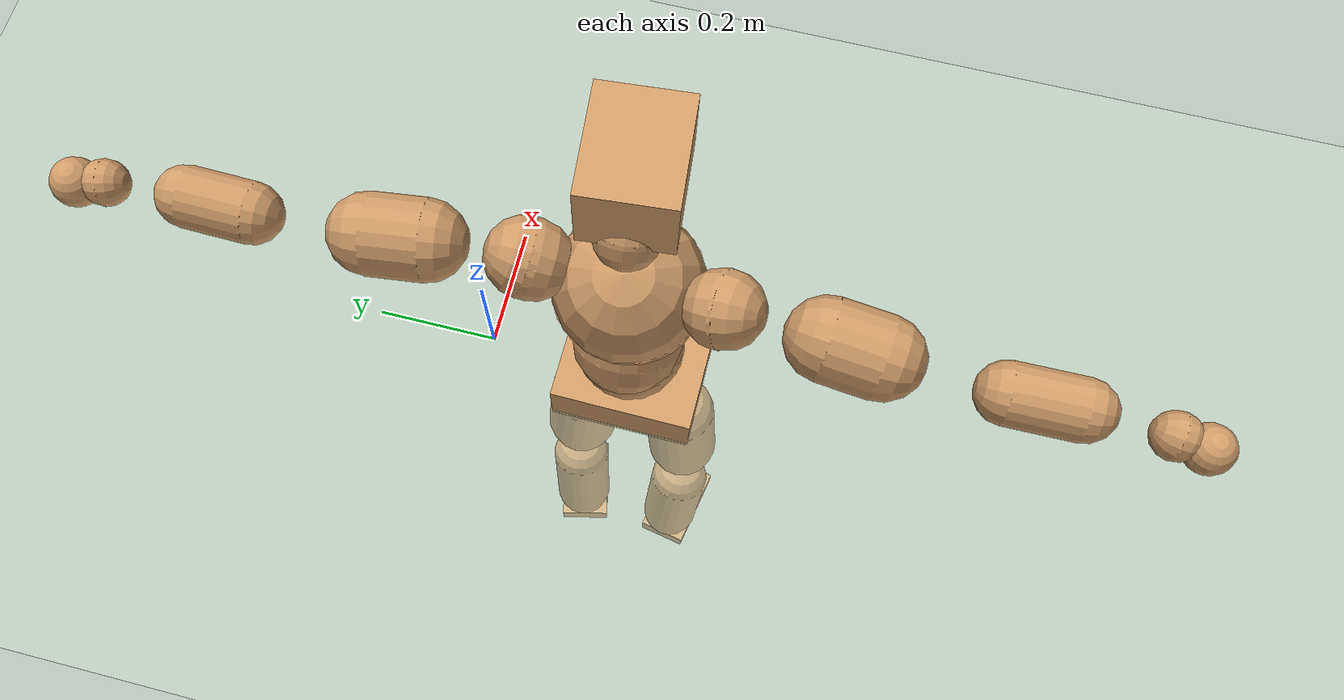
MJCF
<mujoco model="humanoid">
  <compiler coordinate="local" angle="radian"/>
  <default>
    <joint damping="0.0" armature="0.01" stiffness="0.0" limited="true"/>
    <geom conaffinity="1" condim="3" contype="7" margin="0.001" rgba="0.8 0.6 .4 1"/>
  </default>
  <asset>
    <texture type="skybox" builtin="gradient" rgb1=".4 .5 .6" rgb2="0 0 0" width="100" height="100"/>
    <texture builtin="flat" height="1278" mark="cross" markrgb="1 1 1" name="texgeom" random="0.01" rgb1="0.8 0.6 0.4" rgb2="0.8 0.6 0.4" type="cube" width="127"/>
    <texture builtin="checker" height="100" name="texplane" rgb1="0 0 0" rgb2="0.8 0.8 0.8" type="2d" width="100"/>
    <material name="MatPlane" reflectance="0.5" shininess="1" specular="1" texrepeat="60 60" texture="texplane"/>
    <material name="geom" texture="texgeom" texuniform="true"/>
  </asset>
  <worldbody>
    <light cutoff="100" diffuse="1 1 1" dir="-0 0 -1.3" directional="true" exponent="1" pos="0 0 1.3" specular=".1 .1 .1"/>
    <geom conaffinity="1" condim="3" name="floor" pos="0 0 0" rgba="0.8 0.9 0.8 1" size="100 100 .2" type="plane" material="MatPlane"/>
    <body name="Pelvis" pos="-0 -0.2455 0.0458">
      <freejoint name="Pelvis"/>
      <geom type="box" contype="1" conaffinity="1" density="5359.375217" pos="-0.0047 0.0001 -0.0126" size="0.0939 0.1157 0.0439" quat="1.0000 0.0000 0.0000 -0.0058" name="Pelvis"/>
      <body name="L_Hip" pos="0.0023 0.0779 -0.0928">
        <joint name="L_Hip_x" type="hinge" pos="0 0 0" axis="1 0 0" stiffness="1600" damping="160" armature="0.02" range="-180.0000 180.0000"/>
        <joint name="L_Hip_y" type="hinge" pos="0 0 0" axis="0 1 0" stiffness="1600" damping="160" armature="0.02" range="-180.0000 180.0000"/>
        <joint name="L_Hip_z" type="hinge" pos="0 0 0" axis="0 0 1" stiffness="1600" damping="160" armature="0.02" range="-180.0000 180.0000"/>
        <geom type="capsule" contype="1" conaffinity="1" density="2040.816327" size="0.0634" fromto="-0.0032 0.0072 -0.0931 -0.0087 0.0193 -0.2510" name="L_Hip"/>
        <body name="L_Knee" pos="-0.012 0.0265 -0.3441">
          <joint name="L_Knee_x" type="hinge" pos="0 0 0" axis="1 0 0" stiffness="1600" damping="160" armature="0.02" range="-180.0000 180.0000"/>
          <joint name="L_Knee_y" type="hinge" pos="0 0 0" axis="0 1 0" stiffness="1600" damping="160" armature="0.02" range="-180.0000 180.0000"/>
          <joint name="L_Knee_z" type="hinge" pos="0 0 0" axis="0 0 1" stiffness="1600" damping="160" armature="0.02" range="-180.0000 180.0000"/>
          <geom type="capsule" contype="1" conaffinity="1" density="1234.567901" size="0.055" fromto="-0.0101 -0.0027 -0.0844 -0.0342 -0.0089 -0.2842" name="L_Knee"/>
          <body name="L_Ankle" pos="-0.0443 -0.0116 -0.3686">
            <joint name="L_Ankle_x" type="hinge" pos="0 0 0" axis="1 0 0" stiffness="1600" damping="160" armature="0.02" range="-180.0000 180.0000"/>
            <joint name="L_Ankle_y" type="hinge" pos="0 0 0" axis="0 1 0" stiffness="1600" damping="160" armature="0.02" range="-180.0000 180.0000"/>
            <joint name="L_Ankle_z" type="hinge" pos="0 0 0" axis="0 0 1" stiffness="1600" damping="160" armature="0.02" range="-180.0000 180.0000"/>
            <geom type="box" contype="1" conaffinity="1" density="1000.000015" pos="0.0578 0.0136 -0.0276" size="0.0823 0.0491 0.0202" quat="0.9934 0.0000 0.0000 0.1149" name="L_Ankle"/>
            <body name="L_Toe" pos="0.1155 0.0271 -0.0552">
              <joint name="L_Toe_x" type="hinge" pos="0 0 0" axis="1 0 0" stiffness="1000" damping="100" armature="0.02" range="-180.0000 180.0000"/>
              <joint name="L_Toe_y" type="hinge" pos="0 0 0" axis="0 1 0" stiffness="1000" damping="100" armature="0.02" range="-180.0000 180.0000"/>
              <joint name="L_Toe_z" type="hinge" pos="0 0 0" axis="0 0 1" stiffness="1000" damping="100" armature="0.02" range="-180.0000 180.0000"/>
              <geom type="box" contype="1" conaffinity="1" density="8126748.454613" pos="0.0000 0.0000 0.0278" size="0.001 0.0024 0.001" quat="0.9926 0.0000 0.0000 0.1211" name="L_Toe"/>
            </body>
          </body>
        </body>
      </body>
      <body name="R_Hip" pos="0.0047 -0.0747 -0.0929">
        <joint name="R_Hip_x" type="hinge" pos="0 0 0" axis="1 0 0" stiffness="1600" damping="160" armature="0.02" range="-180.0000 180.0000"/>
        <joint name="R_Hip_y" type="hinge" pos="0 0 0" axis="0 1 0" stiffness="1600" damping="160" armature="0.02" range="-180.0000 180.0000"/>
        <joint name="R_Hip_z" type="hinge" pos="0 0 0" axis="0 0 1" stiffness="1600" damping="160" armature="0.02" range="-180.0000 180.0000"/>
        <geom type="capsule" contype="1" conaffinity="1" density="2040.816327" size="0.0626" fromto="-0.0035 -0.0086 -0.0922 -0.0097 -0.0243 -0.2598" name="R_Hip"/>
        <body name="R_Knee" pos="-0.0132 -0.033 -0.352">
          <joint name="R_Knee_x" type="hinge" pos="0 0 0" axis="1 0 0" stiffness="1600" damping="160" armature="0.02" range="-180.0000 180.0000"/>
          <joint name="R_Knee_y" type="hinge" pos="0 0 0" axis="0 1 0" stiffness="1600" damping="160" armature="0.02" range="-180.0000 180.0000"/>
          <joint name="R_Knee_z" type="hinge" pos="0 0 0" axis="0 0 1" stiffness="1600" damping="160" armature="0.02" range="-180.0000 180.0000"/>
          <geom type="capsule" contype="1" conaffinity="1" density="1234.567901" size="0.0553" fromto="-0.0099 0.0030 -0.0847 -0.0336 0.0101 -0.2862" name="R_Knee"/>
          <body name="R_Ankle" pos="-0.0435 0.0131 -0.3708">
            <joint name="R_Ankle_x" type="hinge" pos="0 0 0" axis="1 0 0" stiffness="1600" damping="160" armature="0.02" range="-180.0000 180.0000"/>
            <joint name="R_Ankle_y" type="hinge" pos="0 0 0" axis="0 1 0" stiffness="1600" damping="160" armature="0.02" range="-180.0000 180.0000"/>
            <joint name="R_Ankle_z" type="hinge" pos="0 0 0" axis="0 0 1" stiffness="1600" damping="160" armature="0.02" range="-180.0000 180.0000"/>
            <geom type="box" contype="1" conaffinity="1" density="999.999951" pos="0.0599 -0.0115 -0.0233" size="0.0836 0.0478 0.0203" quat="0.9955 0.0000 0.0000 -0.0945" name="R_Ankle"/>
            <body name="R_Toe" pos="0.1197 -0.0229 -0.0465">
              <joint name="R_Toe_x" type="hinge" pos="0 0 0" axis="1 0 0" stiffness="1000" damping="100" armature="0.02" range="-180.0000 180.0000"/>
              <joint name="R_Toe_y" type="hinge" pos="0 0 0" axis="0 1 0" stiffness="1000" damping="100" armature="0.02" range="-180.0000 180.0000"/>
              <joint name="R_Toe_z" type="hinge" pos="0 0 0" axis="0 0 1" stiffness="1000" damping="100" armature="0.02" range="-180.0000 180.0000"/>
              <geom type="box" contype="1" conaffinity="1" density="8065777.958834" pos="0.0000 0.0000 0.0256" size="0.001 0.0024 0.0011" quat="0.9964 0.0000 0.0000 -0.0851" name="R_Toe"/>
            </body>
          </body>
        </body>
      </body>
      <body name="Torso" pos="-0.035 -0.0029 0.11">
        <joint name="Torso_x" type="hinge" pos="0 0 0" axis="1 0 0" stiffness="2000" damping="200" armature="0.02" range="-180.0000 180.0000"/>
        <joint name="Torso_y" type="hinge" pos="0 0 0" axis="0 1 0" stiffness="2000" damping="200" armature="0.02" range="-180.0000 180.0000"/>
        <joint name="Torso_z" type="hinge" pos="0 0 0" axis="0 0 1" stiffness="2000" damping="200" armature="0.02" range="-180.0000 180.0000"/>
        <geom type="capsule" contype="1" conaffinity="1" density="2040.816327" size="0.0814" fromto="-0.0043 0.0025 0.0813 -0.0030 0.0017 0.0555" name="Torso"/>
        <body name="Spine" pos="-0.0073 0.0042 0.1367">
          <joint name="Spine_x" type="hinge" pos="0 0 0" axis="1 0 0" stiffness="2000" damping="200" armature="0.02" range="-180.0000 180.0000"/>
          <joint name="Spine_y" type="hinge" pos="0 0 0" axis="0 1 0" stiffness="2000" damping="200" armature="0.02" range="-180.0000 180.0000"/>
          <joint name="Spine_z" type="hinge" pos="0 0 0" axis="0 0 1" stiffness="2000" damping="200" armature="0.02" range="-180.0000 180.0000"/>
          <geom type="capsule" contype="1" conaffinity="1" density="2040.816327" size="0.0816" fromto="0.0403 0.0016 0.0709 -0.0096 -0.0004 -0.0168" name="Spine"/>
          <body name="Chest" pos="0.0307 0.0012 0.0541">
            <joint name="Chest_x" type="hinge" pos="0 0 0" axis="1 0 0" stiffness="2000" damping="200" armature="0.02" range="-180.0000 180.0000"/>
            <joint name="Chest_y" type="hinge" pos="0 0 0" axis="0 1 0" stiffness="2000" damping="200" armature="0.02" range="-180.0000 180.0000"/>
            <joint name="Chest_z" type="hinge" pos="0 0 0" axis="0 0 1" stiffness="2000" damping="200" armature="0.02" range="-180.0000 180.0000"/>
            <geom type="capsule" contype="1" conaffinity="1" density="2040.816327" size="0.1057" fromto="-0.0327 -0.0007 0.1005 -0.0218 -0.0005 0.0671" name="Chest"/>
            <body name="Neck" pos="-0.0674 -0.0019 0.2382">
              <joint name="Neck_x" type="hinge" pos="0 0 0" axis="1 0 0" stiffness="1000" damping="100" armature="0.02" range="-180.0000 180.0000"/>
              <joint name="Neck_y" type="hinge" pos="0 0 0" axis="0 1 0" stiffness="1000" damping="100" armature="0.02" range="-180.0000 180.0000"/>
              <joint name="Neck_z" type="hinge" pos="0 0 0" axis="0 0 1" stiffness="1000" damping="100" armature="0.02" range="-180.0000 180.0000"/>
              <geom type="capsule" contype="1" conaffinity="1" density="1000" size="0.0443" fromto="0.0268 0.0013 0.0353 0.0231 0.0011 0.0304" name="Neck"/>
              <body name="Head" pos="0.0498 0.0025 0.0656">
                <joint name="Head_x" type="hinge" pos="0 0 0" axis="1 0 0" stiffness="1000" damping="100" armature="0.02" range="-180.0000 180.0000"/>
                <joint name="Head_y" type="hinge" pos="0 0 0" axis="0 1 0" stiffness="1000" damping="100" armature="0.02" range="-180.0000 180.0000"/>
                <joint name="Head_z" type="hinge" pos="0 0 0" axis="0 0 1" stiffness="1000" damping="100" armature="0.02" range="-180.0000 180.0000"/>
                <geom type="box" contype="1" conaffinity="1" density="2250.00017" pos="0.0259 0.0022 0.0338" size="0.076 0.0618 0.0546" quat="0.9991 0.0000 0.0000 0.0428" name="Head"/>
              </body>
            </body>
            <body name="L_Thorax" pos="-0.0451 0.0823 0.1337">
              <joint name="L_Thorax_x" type="hinge" pos="0 0 0" axis="1 0 0" stiffness="1000" damping="100" armature="0.02" range="-180.0000 180.0000"/>
              <joint name="L_Thorax_y" type="hinge" pos="0 0 0" axis="0 1 0" stiffness="1000" damping="100" armature="0.02" range="-180.0000 180.0000"/>
              <joint name="L_Thorax_z" type="hinge" pos="0 0 0" axis="0 0 1" stiffness="1000" damping="100" armature="0.02" range="-180.0000 180.0000"/>
              <geom type="capsule" contype="1" conaffinity="1" density="1000" size="0.0553" fromto="-0.0045 0.0524 0.0172 -0.0036 0.0416 0.0137" name="L_Thorax"/>
              <body name="L_Shoulder" pos="-0.0081 0.094 0.0309">
                <joint name="L_Shoulder_x" type="hinge" pos="0 0 0" axis="1 0 0" stiffness="1000" damping="100" armature="0.02" range="-720.0000 720.0000"/>
                <joint name="L_Shoulder_y" type="hinge" pos="0 0 0" axis="0 1 0" stiffness="1000" damping="100" armature="0.02" range="-720.0000 720.0000"/>
                <joint name="L_Shoulder_z" type="hinge" pos="0 0 0" axis="0 0 1" stiffness="1000" damping="100" armature="0.02" range="-720.0000 720.0000"/>
                <geom type="capsule" contype="1" conaffinity="1" density="1000" size="0.0557" fromto="-0.0093 0.0851 -0.0027 -0.0177 0.1623 -0.0052" name="L_Shoulder"/>
                <body name="L_Elbow" pos="-0.027 0.2474 -0.0079">
                  <joint name="L_Elbow_x" type="hinge" pos="0 0 0" axis="1 0 0" stiffness="1000" damping="100" armature="0.02" range="-720.0000 720.0000"/>
                  <joint name="L_Elbow_y" type="hinge" pos="0 0 0" axis="0 1 0" stiffness="1000" damping="100" armature="0.02" range="-720.0000 720.0000"/>
                  <joint name="L_Elbow_z" type="hinge" pos="0 0 0" axis="0 0 1" stiffness="1000" damping="100" armature="0.02" range="-720.0000 720.0000"/>
                  <geom type="capsule" contype="1" conaffinity="1" density="1000" size="0.0421" fromto="0.0007 0.0720 0.0022 0.0016 0.1620 0.0049" name="L_Elbow"/>
                  <body name="L_Wrist" pos="0.0024 0.2341 0.0071">
                    <joint name="L_Wrist_x" type="hinge" pos="0 0 0" axis="1 0 0" stiffness="600" damping="60" armature="0.02" range="-180.0000 180.0000"/>
                    <joint name="L_Wrist_y" type="hinge" pos="0 0 0" axis="0 1 0" stiffness="600" damping="60" armature="0.02" range="-180.0000 180.0000"/>
                    <joint name="L_Wrist_z" type="hinge" pos="0 0 0" axis="0 0 1" stiffness="600" damping="60" armature="0.02" range="-180.0000 180.0000"/>
                    <geom type="capsule" contype="1" conaffinity="1" density="1000" size="0.0317" fromto="-0.0065 0.0404 -0.0048 -0.0068 0.0423 -0.0050" name="L_Wrist"/>
                    <body name="L_Hand" pos="-0.0133 0.0827 -0.0098">
                      <joint name="L_Hand_x" type="hinge" pos="0 0 0" axis="1 0 0" stiffness="600" damping="60" armature="0.02" range="-180.0000 180.0000"/>
                      <joint name="L_Hand_y" type="hinge" pos="0 0 0" axis="0 1 0" stiffness="600" damping="60" armature="0.02" range="-180.0000 180.0000"/>
                      <joint name="L_Hand_z" type="hinge" pos="0 0 0" axis="0 0 1" stiffness="600" damping="60" armature="0.02" range="-180.0000 180.0000"/>
                      <geom type="sphere" contype="1" conaffinity="1" density="1000" size="0.0335" pos="0.0000 0.0000 0.0000" name="L_Hand"/>
                    </body>
                  </body>
                </body>
              </body>
            </body>
            <body name="R_Thorax" pos="-0.0511 -0.0841 0.1309">
              <joint name="R_Thorax_x" type="hinge" pos="0 0 0" axis="1 0 0" stiffness="1000" damping="100" armature="0.02" range="-180.0000 180.0000"/>
              <joint name="R_Thorax_y" type="hinge" pos="0 0 0" axis="0 1 0" stiffness="1000" damping="100" armature="0.02" range="-180.0000 180.0000"/>
              <joint name="R_Thorax_z" type="hinge" pos="0 0 0" axis="0 0 1" stiffness="1000" damping="100" armature="0.02" range="-180.0000 180.0000"/>
              <geom type="capsule" contype="1" conaffinity="1" density="1000" size="0.054" fromto="-0.0058 -0.0509 0.0170 -0.0053 -0.0460 0.0154" name="R_Thorax"/>
              <body name="R_Shoulder" pos="-0.0111 -0.097 0.0324">
                <joint name="R_Shoulder_x" type="hinge" pos="0 0 0" axis="1 0 0" stiffness="1000" damping="100" armature="0.02" range="-720.0000 720.0000"/>
                <joint name="R_Shoulder_y" type="hinge" pos="0 0 0" axis="0 1 0" stiffness="1000" damping="100" armature="0.02" range="-720.0000 720.0000"/>
                <joint name="R_Shoulder_z" type="hinge" pos="0 0 0" axis="0 0 1" stiffness="1000" damping="100" armature="0.02" range="-720.0000 720.0000"/>
                <geom type="capsule" contype="1" conaffinity="1" density="1000" size="0.0567" fromto="-0.0075 -0.0863 -0.0042 -0.0138 -0.1590 -0.0077" name="R_Shoulder"/>
                <body name="R_Elbow" pos="-0.0213 -0.2452 -0.0118">
                  <joint name="R_Elbow_x" type="hinge" pos="0 0 0" axis="1 0 0" stiffness="1000" damping="100" armature="0.02" range="-720.0000 720.0000"/>
                  <joint name="R_Elbow_y" type="hinge" pos="0 0 0" axis="0 1 0" stiffness="1000" damping="100" armature="0.02" range="-720.0000 720.0000"/>
                  <joint name="R_Elbow_z" type="hinge" pos="0 0 0" axis="0 0 1" stiffness="1000" damping="100" armature="0.02" range="-720.0000 720.0000"/>
                  <geom type="capsule" contype="1" conaffinity="1" density="1000" size="0.042" fromto="-0.0003 -0.0719 0.0029 -0.0006 -0.1678 0.0067" name="R_Elbow"/>
                  <body name="R_Wrist" pos="-0.0009 -0.2397 0.0095">
                    <joint name="R_Wrist_x" type="hinge" pos="0 0 0" axis="1 0 0" stiffness="600" damping="60" armature="0.02" range="-180.0000 180.0000"/>
                    <joint name="R_Wrist_y" type="hinge" pos="0 0 0" axis="0 1 0" stiffness="600" damping="60" armature="0.02" range="-180.0000 180.0000"/>
                    <joint name="R_Wrist_z" type="hinge" pos="0 0 0" axis="0 0 1" stiffness="600" damping="60" armature="0.02" range="-180.0000 180.0000"/>
                    <geom type="capsule" contype="1" conaffinity="1" density="1000" size="0.0322" fromto="-0.0052 -0.0405 -0.0036 -0.0054 -0.0425 -0.0038" name="R_Wrist"/>
                    <body name="R_Hand" pos="-0.0106 -0.083 -0.0073">
                      <joint name="R_Hand_x" type="hinge" pos="0 0 0" axis="1 0 0" stiffness="600" damping="60" armature="0.02" range="-180.0000 180.0000"/>
                      <joint name="R_Hand_y" type="hinge" pos="0 0 0" axis="0 1 0" stiffness="600" damping="60" armature="0.02" range="-180.0000 180.0000"/>
                      <joint name="R_Hand_z" type="hinge" pos="0 0 0" axis="0 0 1" stiffness="600" damping="60" armature="0.02" range="-180.0000 180.0000"/>
                      <geom type="sphere" contype="1" conaffinity="1" density="1000" size="0.0334" pos="0.0000 0.0000 0.0000" name="R_Hand"/>
                    </body>
                  </body>
                </body>
              </body>
            </body>
          </body>
        </body>
      </body>
    </body>
  </worldbody>
  <actuator>
    <motor name="L_Hip_x" joint="L_Hip_x" gear="500"/>
    <motor name="L_Hip_y" joint="L_Hip_y" gear="500"/>
    <motor name="L_Hip_z" joint="L_Hip_z" gear="500"/>
    <motor name="L_Knee_x" joint="L_Knee_x" gear="500"/>
    <motor name="L_Knee_y" joint="L_Knee_y" gear="500"/>
    <motor name="L_Knee_z" joint="L_Knee_z" gear="500"/>
    <motor name="L_Ankle_x" joint="L_Ankle_x" gear="500"/>
    <motor name="L_Ankle_y" joint="L_Ankle_y" gear="500"/>
    <motor name="L_Ankle_z" joint="L_Ankle_z" gear="500"/>
    <motor name="L_Toe_x" joint="L_Toe_x" gear="500"/>
    <motor name="L_Toe_y" joint="L_Toe_y" gear="500"/>
    <motor name="L_Toe_z" joint="L_Toe_z" gear="500"/>
    <motor name="R_Hip_x" joint="R_Hip_x" gear="500"/>
    <motor name="R_Hip_y" joint="R_Hip_y" gear="500"/>
    <motor name="R_Hip_z" joint="R_Hip_z" gear="500"/>
    <motor name="R_Knee_x" joint="R_Knee_x" gear="500"/>
    <motor name="R_Knee_y" joint="R_Knee_y" gear="500"/>
    <motor name="R_Knee_z" joint="R_Knee_z" gear="500"/>
    <motor name="R_Ankle_x" joint="R_Ankle_x" gear="500"/>
    <motor name="R_Ankle_y" joint="R_Ankle_y" gear="500"/>
    <motor name="R_Ankle_z" joint="R_Ankle_z" gear="500"/>
    <motor name="R_Toe_x" joint="R_Toe_x" gear="500"/>
    <motor name="R_Toe_y" joint="R_Toe_y" gear="500"/>
    <motor name="R_Toe_z" joint="R_Toe_z" gear="500"/>
    <motor name="Torso_x" joint="Torso_x" gear="500"/>
    <motor name="Torso_y" joint="Torso_y" gear="500"/>
    <motor name="Torso_z" joint="Torso_z" gear="500"/>
    <motor name="Spine_x" joint="Spine_x" gear="500"/>
    <motor name="Spine_y" joint="Spine_y" gear="500"/>
    <motor name="Spine_z" joint="Spine_z" gear="500"/>
    <motor name="Chest_x" joint="Chest_x" gear="500"/>
    <motor name="Chest_y" joint="Chest_y" gear="500"/>
    <motor name="Chest_z" joint="Chest_z" gear="500"/>
    <motor name="Neck_x" joint="Neck_x" gear="500"/>
    <motor name="Neck_y" joint="Neck_y" gear="500"/>
    <motor name="Neck_z" joint="Neck_z" gear="500"/>
    <motor name="Head_x" joint="Head_x" gear="500"/>
    <motor name="Head_y" joint="Head_y" gear="500"/>
    <motor name="Head_z" joint="Head_z" gear="500"/>
    <motor name="L_Thorax_x" joint="L_Thorax_x" gear="500"/>
    <motor name="L_Thorax_y" joint="L_Thorax_y" gear="500"/>
    <motor name="L_Thorax_z" joint="L_Thorax_z" gear="500"/>
    <motor name="L_Shoulder_x" joint="L_Shoulder_x" gear="500"/>
    <motor name="L_Shoulder_y" joint="L_Shoulder_y" gear="500"/>
    <motor name="L_Shoulder_z" joint="L_Shoulder_z" gear="500"/>
    <motor name="L_Elbow_x" joint="L_Elbow_x" gear="500"/>
    <motor name="L_Elbow_y" joint="L_Elbow_y" gear="500"/>
    <motor name="L_Elbow_z" joint="L_Elbow_z" gear="500"/>
    <motor name="L_Wrist_x" joint="L_Wrist_x" gear="500"/>
    <motor name="L_Wrist_y" joint="L_Wrist_y" gear="500"/>
    <motor name="L_Wrist_z" joint="L_Wrist_z" gear="500"/>
    <motor name="L_Hand_x" joint="L_Hand_x" gear="500"/>
    <motor name="L_Hand_y" joint="L_Hand_y" gear="500"/>
    <motor name="L_Hand_z" joint="L_Hand_z" gear="500"/>
    <motor name="R_Thorax_x" joint="R_Thorax_x" gear="500"/>
    <motor name="R_Thorax_y" joint="R_Thorax_y" gear="500"/>
    <motor name="R_Thorax_z" joint="R_Thorax_z" gear="500"/>
    <motor name="R_Shoulder_x" joint="R_Shoulder_x" gear="500"/>
    <motor name="R_Shoulder_y" joint="R_Shoulder_y" gear="500"/>
    <motor name="R_Shoulder_z" joint="R_Shoulder_z" gear="500"/>
    <motor name="R_Elbow_x" joint="R_Elbow_x" gear="500"/>
    <motor name="R_Elbow_y" joint="R_Elbow_y" gear="500"/>
    <motor name="R_Elbow_z" joint="R_Elbow_z" gear="500"/>
    <motor name="R_Wrist_x" joint="R_Wrist_x" gear="500"/>
    <motor name="R_Wrist_y" joint="R_Wrist_y" gear="500"/>
    <motor name="R_Wrist_z" joint="R_Wrist_z" gear="500"/>
    <motor name="R_Hand_x" joint="R_Hand_x" gear="500"/>
    <motor name="R_Hand_y" joint="R_Hand_y" gear="500"/>
    <motor name="R_Hand_z" joint="R_Hand_z" gear="500"/>
  </actuator>
  <contact>
    <exclude body1="Torso" body2="Chest"/>
    <exclude body1="Head" body2="Chest"/>
    <exclude body1="R_Knee" body2="R_Toe"/>
    <exclude body1="R_Knee" body2="L_Ankle"/>
    <exclude body1="R_Knee" body2="L_Toe"/>
    <exclude body1="L_Knee" body2="L_Toe"/>
    <exclude body1="L_Knee" body2="R_Ankle"/>
    <exclude body1="L_Knee" body2="R_Toe"/>
    <exclude body1="L_Shoulder" body2="Chest"/>
    <exclude body1="R_Shoulder" body2="Chest"/>
  </contact>
  <sensor/>
  <size njmax="700" nconmax="700"/>
</mujoco>
